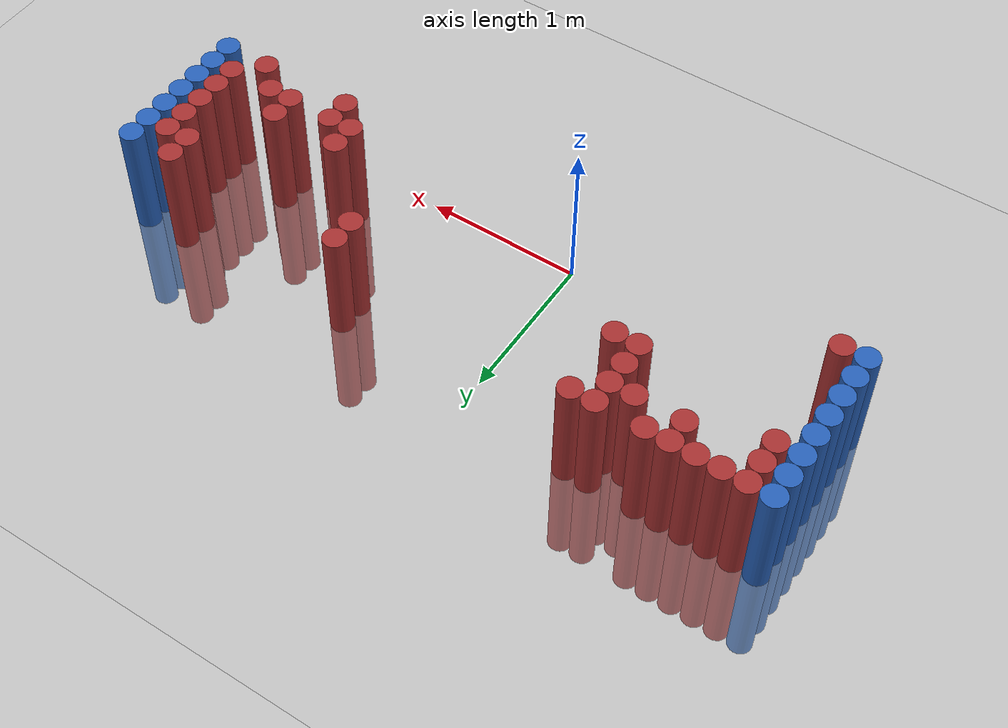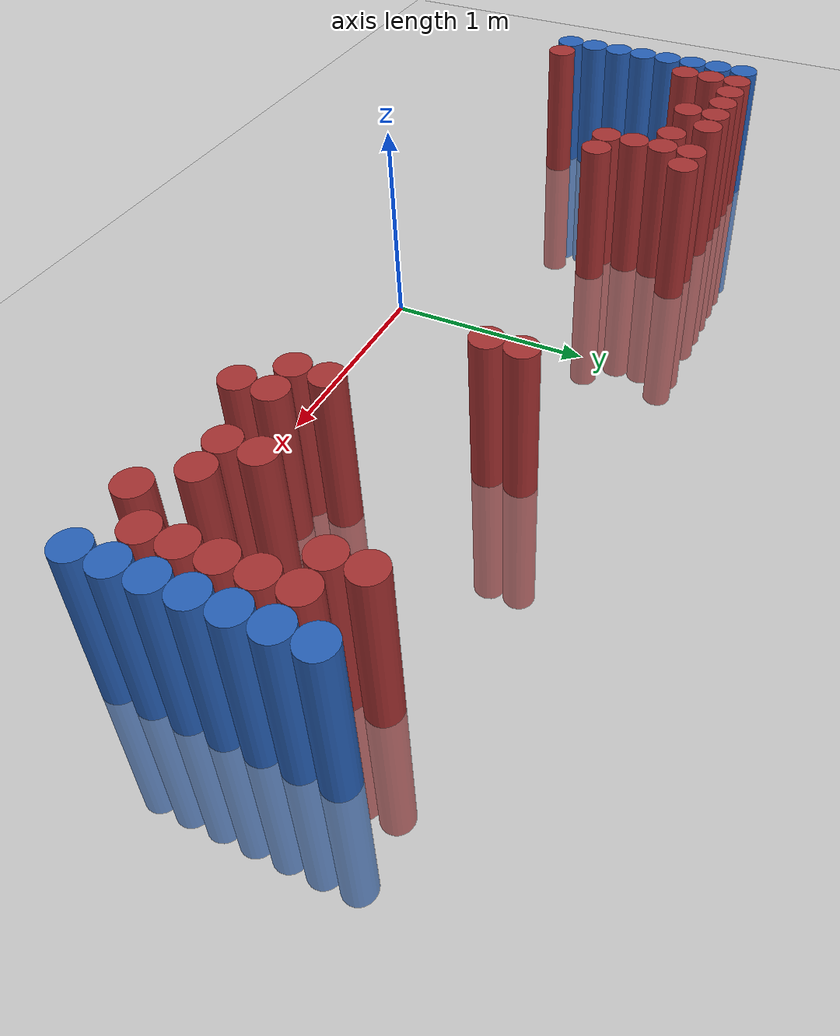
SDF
<sdf version="1.6">
 <world name="default">
  <model name="ground_plane">
   <static>1</static>
   <link name="link">
    <collision name="collision">
     <geometry><plane><normal>0 0 1</normal><size>100 100</size></plane></geometry>
     <surface><friction><ode><mu>100</mu><mu2>50</mu2></ode></friction></surface>
    </collision>
    <visual name="visual">
     <cast_shadows>0</cast_shadows>
     <geometry><plane><normal>0 0 1</normal><size>100 100</size></plane></geometry>
     <material>
      <script><uri>file://media/materials/scripts/gazebo.material</uri><name>Gazebo/Grey</name></script>
     </material>
    </visual>
   </link>
  </model>
  <model name="unit_cylinder_96">
   <static>1</static>
   <pose>-1.925000 0.175000 0.000000 0.000000 0.000000 0.000000</pose>
   <link name="link">
    <inertial>
     <mass>1</mass>
     <inertia><ixx>0.145833</ixx><ixy>0</ixy><ixz>0</ixz><iyy>0.145833</iyy><iyz>0</iyz><izz>0.125</izz></inertia>
    </inertial>
    <collision name="collision">
     <geometry><cylinder><radius>0.075000</radius><length>1.5</length></cylinder></geometry>
    </collision>
    <visual name="visual">
     <geometry><cylinder><radius>0.075000</radius><length>1.5</length></cylinder></geometry>
     <material>
      <ambient>0.152000 0.379000 0.720000 1</ambient>
      <diffuse>0.152000 0.379000 0.720000 1</diffuse>
     </material>
     <material>
      <script><name>Gazebo/Grey</name><uri>file://media/materials/scripts/gazebo.material</uri></script>
     </material>
    </visual>
   </link>
  </model>
  <model name="unit_cylinder_97">
   <static>1</static>
   <pose>-1.925000 0.325000 0.000000 0.000000 0.000000 0.000000</pose>
   <link name="link">
    <inertial>
     <mass>1</mass>
     <inertia><ixx>0.145833</ixx><ixy>0</ixy><ixz>0</ixz><iyy>0.145833</iyy><iyz>0</iyz><izz>0.125</izz></inertia>
    </inertial>
    <collision name="collision">
     <geometry><cylinder><radius>0.075000</radius><length>1.5</length></cylinder></geometry>
    </collision>
    <visual name="visual">
     <geometry><cylinder><radius>0.075000</radius><length>1.5</length></cylinder></geometry>
     <material>
      <ambient>0.152000 0.379000 0.720000 1</ambient>
      <diffuse>0.152000 0.379000 0.720000 1</diffuse>
     </material>
     <material>
      <script><name>Gazebo/Grey</name><uri>file://media/materials/scripts/gazebo.material</uri></script>
     </material>
    </visual>
   </link>
  </model>
  <model name="unit_cylinder_98">
   <static>1</static>
   <pose>-1.925000 0.475000 0.000000 0.000000 0.000000 0.000000</pose>
   <link name="link">
    <inertial>
     <mass>1</mass>
     <inertia><ixx>0.145833</ixx><ixy>0</ixy><ixz>0</ixz><iyy>0.145833</iyy><iyz>0</iyz><izz>0.125</izz></inertia>
    </inertial>
    <collision name="collision">
     <geometry><cylinder><radius>0.075000</radius><length>1.5</length></cylinder></geometry>
    </collision>
    <visual name="visual">
     <geometry><cylinder><radius>0.075000</radius><length>1.5</length></cylinder></geometry>
     <material>
      <ambient>0.152000 0.379000 0.720000 1</ambient>
      <diffuse>0.152000 0.379000 0.720000 1</diffuse>
     </material>
     <material>
      <script><name>Gazebo/Grey</name><uri>file://media/materials/scripts/gazebo.material</uri></script>
     </material>
    </visual>
   </link>
  </model>
  <model name="unit_cylinder_99">
   <static>1</static>
   <pose>-1.925000 0.625000 0.000000 0.000000 0.000000 0.000000</pose>
   <link name="link">
    <inertial>
     <mass>1</mass>
     <inertia><ixx>0.145833</ixx><ixy>0</ixy><ixz>0</ixz><iyy>0.145833</iyy><iyz>0</iyz><izz>0.125</izz></inertia>
    </inertial>
    <collision name="collision">
     <geometry><cylinder><radius>0.075000</radius><length>1.5</length></cylinder></geometry>
    </collision>
    <visual name="visual">
     <geometry><cylinder><radius>0.075000</radius><length>1.5</length></cylinder></geometry>
     <material>
      <ambient>0.152000 0.379000 0.720000 1</ambient>
      <diffuse>0.152000 0.379000 0.720000 1</diffuse>
     </material>
     <material>
      <script><name>Gazebo/Grey</name><uri>file://media/materials/scripts/gazebo.material</uri></script>
     </material>
    </visual>
   </link>
  </model>
  <model name="unit_cylinder_100">
   <static>1</static>
   <pose>-1.925000 0.775000 0.000000 0.000000 0.000000 0.000000</pose>
   <link name="link">
    <inertial>
     <mass>1</mass>
     <inertia><ixx>0.145833</ixx><ixy>0</ixy><ixz>0</ixz><iyy>0.145833</iyy><iyz>0</iyz><izz>0.125</izz></inertia>
    </inertial>
    <collision name="collision">
     <geometry><cylinder><radius>0.075000</radius><length>1.5</length></cylinder></geometry>
    </collision>
    <visual name="visual">
     <geometry><cylinder><radius>0.075000</radius><length>1.5</length></cylinder></geometry>
     <material>
      <ambient>0.152000 0.379000 0.720000 1</ambient>
      <diffuse>0.152000 0.379000 0.720000 1</diffuse>
     </material>
     <material>
      <script><name>Gazebo/Grey</name><uri>file://media/materials/scripts/gazebo.material</uri></script>
     </material>
    </visual>
   </link>
  </model>
  <model name="unit_cylinder_101">
   <static>1</static>
   <pose>-1.925000 0.925000 0.000000 0.000000 0.000000 0.000000</pose>
   <link name="link">
    <inertial>
     <mass>1</mass>
     <inertia><ixx>0.145833</ixx><ixy>0</ixy><ixz>0</ixz><iyy>0.145833</iyy><iyz>0</iyz><izz>0.125</izz></inertia>
    </inertial>
    <collision name="collision">
     <geometry><cylinder><radius>0.075000</radius><length>1.5</length></cylinder></geometry>
    </collision>
    <visual name="visual">
     <geometry><cylinder><radius>0.075000</radius><length>1.5</length></cylinder></geometry>
     <material>
      <ambient>0.152000 0.379000 0.720000 1</ambient>
      <diffuse>0.152000 0.379000 0.720000 1</diffuse>
     </material>
     <material>
      <script><name>Gazebo/Grey</name><uri>file://media/materials/scripts/gazebo.material</uri></script>
     </material>
    </visual>
   </link>
  </model>
  <model name="unit_cylinder_102">
   <static>1</static>
   <pose>-1.925000 1.075000 0.000000 0.000000 0.000000 0.000000</pose>
   <link name="link">
    <inertial>
     <mass>1</mass>
     <inertia><ixx>0.145833</ixx><ixy>0</ixy><ixz>0</ixz><iyy>0.145833</iyy><iyz>0</iyz><izz>0.125</izz></inertia>
    </inertial>
    <collision name="collision">
     <geometry><cylinder><radius>0.075000</radius><length>1.5</length></cylinder></geometry>
    </collision>
    <visual name="visual">
     <geometry><cylinder><radius>0.075000</radius><length>1.5</length></cylinder></geometry>
     <material>
      <ambient>0.152000 0.379000 0.720000 1</ambient>
      <diffuse>0.152000 0.379000 0.720000 1</diffuse>
     </material>
     <material>
      <script><name>Gazebo/Grey</name><uri>file://media/materials/scripts/gazebo.material</uri></script>
     </material>
    </visual>
   </link>
  </model>
  <model name="unit_cylinder_103">
   <static>1</static>
   <pose>-1.925000 1.225000 0.000000 0.000000 0.000000 0.000000</pose>
   <link name="link">
    <inertial>
     <mass>1</mass>
     <inertia><ixx>0.145833</ixx><ixy>0</ixy><ixz>0</ixz><iyy>0.145833</iyy><iyz>0</iyz><izz>0.125</izz></inertia>
    </inertial>
    <collision name="collision">
     <geometry><cylinder><radius>0.075000</radius><length>1.5</length></cylinder></geometry>
    </collision>
    <visual name="visual">
     <geometry><cylinder><radius>0.075000</radius><length>1.5</length></cylinder></geometry>
     <material>
      <ambient>0.152000 0.379000 0.720000 1</ambient>
      <diffuse>0.152000 0.379000 0.720000 1</diffuse>
     </material>
     <material>
      <script><name>Gazebo/Grey</name><uri>file://media/materials/scripts/gazebo.material</uri></script>
     </material>
    </visual>
   </link>
  </model>
  <model name="unit_cylinder_126">
   <static>1</static>
   <pose>-1.775000 0.175000 0.000000 0.000000 0.000000 0.000000</pose>
   <link name="link">
    <inertial>
     <mass>1</mass>
     <inertia><ixx>0.145833</ixx><ixy>0</ixy><ixz>0</ixz><iyy>0.145833</iyy><iyz>0</iyz><izz>0.125</izz></inertia>
    </inertial>
    <collision name="collision">
     <geometry><cylinder><radius>0.075000</radius><length>1.5</length></cylinder></geometry>
    </collision>
    <visual name="visual">
     <geometry><cylinder><radius>0.075000</radius><length>1.5</length></cylinder></geometry>
     <material>
      <ambient>0.648000 0.192000 0.192000 1</ambient>
      <diffuse>0.648000 0.192000 0.192000 1</diffuse>
     </material>
     <material>
      <script><name>Gazebo/Grey</name><uri>file://media/materials/scripts/gazebo.material</uri></script>
     </material>
    </visual>
   </link>
  </model>
  <model name="unit_cylinder_127">
   <static>1</static>
   <pose>-1.775000 0.925000 0.000000 0.000000 0.000000 0.000000</pose>
   <link name="link">
    <inertial>
     <mass>1</mass>
     <inertia><ixx>0.145833</ixx><ixy>0</ixy><ixz>0</ixz><iyy>0.145833</iyy><iyz>0</iyz><izz>0.125</izz></inertia>
    </inertial>
    <collision name="collision">
     <geometry><cylinder><radius>0.075000</radius><length>1.5</length></cylinder></geometry>
    </collision>
    <visual name="visual">
     <geometry><cylinder><radius>0.075000</radius><length>1.5</length></cylinder></geometry>
     <material>
      <ambient>0.648000 0.192000 0.192000 1</ambient>
      <diffuse>0.648000 0.192000 0.192000 1</diffuse>
     </material>
     <material>
      <script><name>Gazebo/Grey</name><uri>file://media/materials/scripts/gazebo.material</uri></script>
     </material>
    </visual>
   </link>
  </model>
  <model name="unit_cylinder_128">
   <static>1</static>
   <pose>-1.775000 1.075000 0.000000 0.000000 0.000000 0.000000</pose>
   <link name="link">
    <inertial>
     <mass>1</mass>
     <inertia><ixx>0.145833</ixx><ixy>0</ixy><ixz>0</ixz><iyy>0.145833</iyy><iyz>0</iyz><izz>0.125</izz></inertia>
    </inertial>
    <collision name="collision">
     <geometry><cylinder><radius>0.075000</radius><length>1.5</length></cylinder></geometry>
    </collision>
    <visual name="visual">
     <geometry><cylinder><radius>0.075000</radius><length>1.5</length></cylinder></geometry>
     <material>
      <ambient>0.648000 0.192000 0.192000 1</ambient>
      <diffuse>0.648000 0.192000 0.192000 1</diffuse>
     </material>
     <material>
      <script><name>Gazebo/Grey</name><uri>file://media/materials/scripts/gazebo.material</uri></script>
     </material>
    </visual>
   </link>
  </model>
  <model name="unit_cylinder_129">
   <static>1</static>
   <pose>-1.775000 1.225000 0.000000 0.000000 0.000000 0.000000</pose>
   <link name="link">
    <inertial>
     <mass>1</mass>
     <inertia><ixx>0.145833</ixx><ixy>0</ixy><ixz>0</ixz><iyy>0.145833</iyy><iyz>0</iyz><izz>0.125</izz></inertia>
    </inertial>
    <collision name="collision">
     <geometry><cylinder><radius>0.075000</radius><length>1.5</length></cylinder></geometry>
    </collision>
    <visual name="visual">
     <geometry><cylinder><radius>0.075000</radius><length>1.5</length></cylinder></geometry>
     <material>
      <ambient>0.648000 0.192000 0.192000 1</ambient>
      <diffuse>0.648000 0.192000 0.192000 1</diffuse>
     </material>
     <material>
      <script><name>Gazebo/Grey</name><uri>file://media/materials/scripts/gazebo.material</uri></script>
     </material>
    </visual>
   </link>
  </model>
  <model name="unit_cylinder_141">
   <static>1</static>
   <pose>-1.625000 1.225000 0.000000 0.000000 0.000000 0.000000</pose>
   <link name="link">
    <inertial>
     <mass>1</mass>
     <inertia><ixx>0.145833</ixx><ixy>0</ixy><ixz>0</ixz><iyy>0.145833</iyy><iyz>0</iyz><izz>0.125</izz></inertia>
    </inertial>
    <collision name="collision">
     <geometry><cylinder><radius>0.075000</radius><length>1.5</length></cylinder></geometry>
    </collision>
    <visual name="visual">
     <geometry><cylinder><radius>0.075000</radius><length>1.5</length></cylinder></geometry>
     <material>
      <ambient>0.648000 0.192000 0.192000 1</ambient>
      <diffuse>0.648000 0.192000 0.192000 1</diffuse>
     </material>
     <material>
      <script><name>Gazebo/Grey</name><uri>file://media/materials/scripts/gazebo.material</uri></script>
     </material>
    </visual>
   </link>
  </model>
  <model name="unit_cylinder_151">
   <static>1</static>
   <pose>-1.475000 1.225000 0.000000 0.000000 0.000000 0.000000</pose>
   <link name="link">
    <inertial>
     <mass>1</mass>
     <inertia><ixx>0.145833</ixx><ixy>0</ixy><ixz>0</ixz><iyy>0.145833</iyy><iyz>0</iyz><izz>0.125</izz></inertia>
    </inertial>
    <collision name="collision">
     <geometry><cylinder><radius>0.075000</radius><length>1.5</length></cylinder></geometry>
    </collision>
    <visual name="visual">
     <geometry><cylinder><radius>0.075000</radius><length>1.5</length></cylinder></geometry>
     <material>
      <ambient>0.648000 0.192000 0.192000 1</ambient>
      <diffuse>0.648000 0.192000 0.192000 1</diffuse>
     </material>
     <material>
      <script><name>Gazebo/Grey</name><uri>file://media/materials/scripts/gazebo.material</uri></script>
     </material>
    </visual>
   </link>
  </model>
  <model name="unit_cylinder_159">
   <static>1</static>
   <pose>-1.325000 1.075000 0.000000 0.000000 0.000000 0.000000</pose>
   <link name="link">
    <inertial>
     <mass>1</mass>
     <inertia><ixx>0.145833</ixx><ixy>0</ixy><ixz>0</ixz><iyy>0.145833</iyy><iyz>0</iyz><izz>0.125</izz></inertia>
    </inertial>
    <collision name="collision">
     <geometry><cylinder><radius>0.075000</radius><length>1.5</length></cylinder></geometry>
    </collision>
    <visual name="visual">
     <geometry><cylinder><radius>0.075000</radius><length>1.5</length></cylinder></geometry>
     <material>
      <ambient>0.648000 0.192000 0.192000 1</ambient>
      <diffuse>0.648000 0.192000 0.192000 1</diffuse>
     </material>
     <material>
      <script><name>Gazebo/Grey</name><uri>file://media/materials/scripts/gazebo.material</uri></script>
     </material>
    </visual>
   </link>
  </model>
  <model name="unit_cylinder_160">
   <static>1</static>
   <pose>-1.325000 1.225000 0.000000 0.000000 0.000000 0.000000</pose>
   <link name="link">
    <inertial>
     <mass>1</mass>
     <inertia><ixx>0.145833</ixx><ixy>0</ixy><ixz>0</ixz><iyy>0.145833</iyy><iyz>0</iyz><izz>0.125</izz></inertia>
    </inertial>
    <collision name="collision">
     <geometry><cylinder><radius>0.075000</radius><length>1.5</length></cylinder></geometry>
    </collision>
    <visual name="visual">
     <geometry><cylinder><radius>0.075000</radius><length>1.5</length></cylinder></geometry>
     <material>
      <ambient>0.648000 0.192000 0.192000 1</ambient>
      <diffuse>0.648000 0.192000 0.192000 1</diffuse>
     </material>
     <material>
      <script><name>Gazebo/Grey</name><uri>file://media/materials/scripts/gazebo.material</uri></script>
     </material>
    </visual>
   </link>
  </model>
  <model name="unit_cylinder_172">
   <static>1</static>
   <pose>-1.175000 1.225000 0.000000 0.000000 0.000000 0.000000</pose>
   <link name="link">
    <inertial>
     <mass>1</mass>
     <inertia><ixx>0.145833</ixx><ixy>0</ixy><ixz>0</ixz><iyy>0.145833</iyy><iyz>0</iyz><izz>0.125</izz></inertia>
    </inertial>
    <collision name="collision">
     <geometry><cylinder><radius>0.075000</radius><length>1.5</length></cylinder></geometry>
    </collision>
    <visual name="visual">
     <geometry><cylinder><radius>0.075000</radius><length>1.5</length></cylinder></geometry>
     <material>
      <ambient>0.648000 0.192000 0.192000 1</ambient>
      <diffuse>0.648000 0.192000 0.192000 1</diffuse>
     </material>
     <material>
      <script><name>Gazebo/Grey</name><uri>file://media/materials/scripts/gazebo.material</uri></script>
     </material>
    </visual>
   </link>
  </model>
  <model name="unit_cylinder_180">
   <static>1</static>
   <pose>-1.025000 1.075000 0.000000 0.000000 0.000000 0.000000</pose>
   <link name="link">
    <inertial>
     <mass>1</mass>
     <inertia><ixx>0.145833</ixx><ixy>0</ixy><ixz>0</ixz><iyy>0.145833</iyy><iyz>0</iyz><izz>0.125</izz></inertia>
    </inertial>
    <collision name="collision">
     <geometry><cylinder><radius>0.075000</radius><length>1.5</length></cylinder></geometry>
    </collision>
    <visual name="visual">
     <geometry><cylinder><radius>0.075000</radius><length>1.5</length></cylinder></geometry>
     <material>
      <ambient>0.648000 0.192000 0.192000 1</ambient>
      <diffuse>0.648000 0.192000 0.192000 1</diffuse>
     </material>
     <material>
      <script><name>Gazebo/Grey</name><uri>file://media/materials/scripts/gazebo.material</uri></script>
     </material>
    </visual>
   </link>
  </model>
  <model name="unit_cylinder_186">
   <static>1</static>
   <pose>-0.875000 0.775000 0.000000 0.000000 0.000000 0.000000</pose>
   <link name="link">
    <inertial>
     <mass>1</mass>
     <inertia><ixx>0.145833</ixx><ixy>0</ixy><ixz>0</ixz><iyy>0.145833</iyy><iyz>0</iyz><izz>0.125</izz></inertia>
    </inertial>
    <collision name="collision">
     <geometry><cylinder><radius>0.075000</radius><length>1.5</length></cylinder></geometry>
    </collision>
    <visual name="visual">
     <geometry><cylinder><radius>0.075000</radius><length>1.5</length></cylinder></geometry>
     <material>
      <ambient>0.648000 0.192000 0.192000 1</ambient>
      <diffuse>0.648000 0.192000 0.192000 1</diffuse>
     </material>
     <material>
      <script><name>Gazebo/Grey</name><uri>file://media/materials/scripts/gazebo.material</uri></script>
     </material>
    </visual>
   </link>
  </model>
  <model name="unit_cylinder_187">
   <static>1</static>
   <pose>-0.875000 0.925000 0.000000 0.000000 0.000000 0.000000</pose>
   <link name="link">
    <inertial>
     <mass>1</mass>
     <inertia><ixx>0.145833</ixx><ixy>0</ixy><ixz>0</ixz><iyy>0.145833</iyy><iyz>0</iyz><izz>0.125</izz></inertia>
    </inertial>
    <collision name="collision">
     <geometry><cylinder><radius>0.075000</radius><length>1.5</length></cylinder></geometry>
    </collision>
    <visual name="visual">
     <geometry><cylinder><radius>0.075000</radius><length>1.5</length></cylinder></geometry>
     <material>
      <ambient>0.648000 0.192000 0.192000 1</ambient>
      <diffuse>0.648000 0.192000 0.192000 1</diffuse>
     </material>
     <material>
      <script><name>Gazebo/Grey</name><uri>file://media/materials/scripts/gazebo.material</uri></script>
     </material>
    </visual>
   </link>
  </model>
  <model name="unit_cylinder_188">
   <static>1</static>
   <pose>-0.875000 1.075000 0.000000 0.000000 0.000000 0.000000</pose>
   <link name="link">
    <inertial>
     <mass>1</mass>
     <inertia><ixx>0.145833</ixx><ixy>0</ixy><ixz>0</ixz><iyy>0.145833</iyy><iyz>0</iyz><izz>0.125</izz></inertia>
    </inertial>
    <collision name="collision">
     <geometry><cylinder><radius>0.075000</radius><length>1.5</length></cylinder></geometry>
    </collision>
    <visual name="visual">
     <geometry><cylinder><radius>0.075000</radius><length>1.5</length></cylinder></geometry>
     <material>
      <ambient>0.648000 0.192000 0.192000 1</ambient>
      <diffuse>0.648000 0.192000 0.192000 1</diffuse>
     </material>
     <material>
      <script><name>Gazebo/Grey</name><uri>file://media/materials/scripts/gazebo.material</uri></script>
     </material>
    </visual>
   </link>
  </model>
  <model name="unit_cylinder_189">
   <static>1</static>
   <pose>-0.875000 1.225000 0.000000 0.000000 0.000000 0.000000</pose>
   <link name="link">
    <inertial>
     <mass>1</mass>
     <inertia><ixx>0.145833</ixx><ixy>0</ixy><ixz>0</ixz><iyy>0.145833</iyy><iyz>0</iyz><izz>0.125</izz></inertia>
    </inertial>
    <collision name="collision">
     <geometry><cylinder><radius>0.075000</radius><length>1.5</length></cylinder></geometry>
    </collision>
    <visual name="visual">
     <geometry><cylinder><radius>0.075000</radius><length>1.5</length></cylinder></geometry>
     <material>
      <ambient>0.648000 0.192000 0.192000 1</ambient>
      <diffuse>0.648000 0.192000 0.192000 1</diffuse>
     </material>
     <material>
      <script><name>Gazebo/Grey</name><uri>file://media/materials/scripts/gazebo.material</uri></script>
     </material>
    </visual>
   </link>
  </model>
  <model name="unit_cylinder_193">
   <static>1</static>
   <pose>-0.725000 0.775000 0.000000 0.000000 0.000000 0.000000</pose>
   <link name="link">
    <inertial>
     <mass>1</mass>
     <inertia><ixx>0.145833</ixx><ixy>0</ixy><ixz>0</ixz><iyy>0.145833</iyy><iyz>0</iyz><izz>0.125</izz></inertia>
    </inertial>
    <collision name="collision">
     <geometry><cylinder><radius>0.075000</radius><length>1.5</length></cylinder></geometry>
    </collision>
    <visual name="visual">
     <geometry><cylinder><radius>0.075000</radius><length>1.5</length></cylinder></geometry>
     <material>
      <ambient>0.648000 0.192000 0.192000 1</ambient>
      <diffuse>0.648000 0.192000 0.192000 1</diffuse>
     </material>
     <material>
      <script><name>Gazebo/Grey</name><uri>file://media/materials/scripts/gazebo.material</uri></script>
     </material>
    </visual>
   </link>
  </model>
  <model name="unit_cylinder_194">
   <static>1</static>
   <pose>-0.725000 1.225000 0.000000 0.000000 0.000000 0.000000</pose>
   <link name="link">
    <inertial>
     <mass>1</mass>
     <inertia><ixx>0.145833</ixx><ixy>0</ixy><ixz>0</ixz><iyy>0.145833</iyy><iyz>0</iyz><izz>0.125</izz></inertia>
    </inertial>
    <collision name="collision">
     <geometry><cylinder><radius>0.075000</radius><length>1.5</length></cylinder></geometry>
    </collision>
    <visual name="visual">
     <geometry><cylinder><radius>0.075000</radius><length>1.5</length></cylinder></geometry>
     <material>
      <ambient>0.648000 0.192000 0.192000 1</ambient>
      <diffuse>0.648000 0.192000 0.192000 1</diffuse>
     </material>
     <material>
      <script><name>Gazebo/Grey</name><uri>file://media/materials/scripts/gazebo.material</uri></script>
     </material>
    </visual>
   </link>
  </model>
  <model name="unit_cylinder_215">
   <static>1</static>
   <pose>0.925000 0.925000 0.000000 0.000000 0.000000 0.000000</pose>
   <link name="link">
    <inertial>
     <mass>1</mass>
     <inertia><ixx>0.145833</ixx><ixy>0</ixy><ixz>0</ixz><iyy>0.145833</iyy><iyz>0</iyz><izz>0.125</izz></inertia>
    </inertial>
    <collision name="collision">
     <geometry><cylinder><radius>0.075000</radius><length>1.5</length></cylinder></geometry>
    </collision>
    <visual name="visual">
     <geometry><cylinder><radius>0.075000</radius><length>1.5</length></cylinder></geometry>
     <material>
      <ambient>0.648000 0.192000 0.192000 1</ambient>
      <diffuse>0.648000 0.192000 0.192000 1</diffuse>
     </material>
     <material>
      <script><name>Gazebo/Grey</name><uri>file://media/materials/scripts/gazebo.material</uri></script>
     </material>
    </visual>
   </link>
  </model>
  <model name="unit_cylinder_216">
   <static>1</static>
   <pose>0.925000 1.075000 0.000000 0.000000 0.000000 0.000000</pose>
   <link name="link">
    <inertial>
     <mass>1</mass>
     <inertia><ixx>0.145833</ixx><ixy>0</ixy><ixz>0</ixz><iyy>0.145833</iyy><iyz>0</iyz><izz>0.125</izz></inertia>
    </inertial>
    <collision name="collision">
     <geometry><cylinder><radius>0.075000</radius><length>1.5</length></cylinder></geometry>
    </collision>
    <visual name="visual">
     <geometry><cylinder><radius>0.075000</radius><length>1.5</length></cylinder></geometry>
     <material>
      <ambient>0.648000 0.192000 0.192000 1</ambient>
      <diffuse>0.648000 0.192000 0.192000 1</diffuse>
     </material>
     <material>
      <script><name>Gazebo/Grey</name><uri>file://media/materials/scripts/gazebo.material</uri></script>
     </material>
    </visual>
   </link>
  </model>
  <model name="unit_cylinder_220">
   <static>1</static>
   <pose>1.375000 0.325000 0.000000 0.000000 0.000000 0.000000</pose>
   <link name="link">
    <inertial>
     <mass>1</mass>
     <inertia><ixx>0.145833</ixx><ixy>0</ixy><ixz>0</ixz><iyy>0.145833</iyy><iyz>0</iyz><izz>0.125</izz></inertia>
    </inertial>
    <collision name="collision">
     <geometry><cylinder><radius>0.075000</radius><length>1.5</length></cylinder></geometry>
    </collision>
    <visual name="visual">
     <geometry><cylinder><radius>0.075000</radius><length>1.5</length></cylinder></geometry>
     <material>
      <ambient>0.648000 0.192000 0.192000 1</ambient>
      <diffuse>0.648000 0.192000 0.192000 1</diffuse>
     </material>
     <material>
      <script><name>Gazebo/Grey</name><uri>file://media/materials/scripts/gazebo.material</uri></script>
     </material>
    </visual>
   </link>
  </model>
  <model name="unit_cylinder_221">
   <static>1</static>
   <pose>1.375000 0.475000 0.000000 0.000000 0.000000 0.000000</pose>
   <link name="link">
    <inertial>
     <mass>1</mass>
     <inertia><ixx>0.145833</ixx><ixy>0</ixy><ixz>0</ixz><iyy>0.145833</iyy><iyz>0</iyz><izz>0.125</izz></inertia>
    </inertial>
    <collision name="collision">
     <geometry><cylinder><radius>0.075000</radius><length>1.5</length></cylinder></geometry>
    </collision>
    <visual name="visual">
     <geometry><cylinder><radius>0.075000</radius><length>1.5</length></cylinder></geometry>
     <material>
      <ambient>0.648000 0.192000 0.192000 1</ambient>
      <diffuse>0.648000 0.192000 0.192000 1</diffuse>
     </material>
     <material>
      <script><name>Gazebo/Grey</name><uri>file://media/materials/scripts/gazebo.material</uri></script>
     </material>
    </visual>
   </link>
  </model>
  <model name="unit_cylinder_224">
   <static>1</static>
   <pose>1.525000 0.175000 0.000000 0.000000 0.000000 0.000000</pose>
   <link name="link">
    <inertial>
     <mass>1</mass>
     <inertia><ixx>0.145833</ixx><ixy>0</ixy><ixz>0</ixz><iyy>0.145833</iyy><iyz>0</iyz><izz>0.125</izz></inertia>
    </inertial>
    <collision name="collision">
     <geometry><cylinder><radius>0.075000</radius><length>1.5</length></cylinder></geometry>
    </collision>
    <visual name="visual">
     <geometry><cylinder><radius>0.075000</radius><length>1.5</length></cylinder></geometry>
     <material>
      <ambient>0.648000 0.192000 0.192000 1</ambient>
      <diffuse>0.648000 0.192000 0.192000 1</diffuse>
     </material>
     <material>
      <script><name>Gazebo/Grey</name><uri>file://media/materials/scripts/gazebo.material</uri></script>
     </material>
    </visual>
   </link>
  </model>
  <model name="unit_cylinder_225">
   <static>1</static>
   <pose>1.525000 0.325000 0.000000 0.000000 0.000000 0.000000</pose>
   <link name="link">
    <inertial>
     <mass>1</mass>
     <inertia><ixx>0.145833</ixx><ixy>0</ixy><ixz>0</ixz><iyy>0.145833</iyy><iyz>0</iyz><izz>0.125</izz></inertia>
    </inertial>
    <collision name="collision">
     <geometry><cylinder><radius>0.075000</radius><length>1.5</length></cylinder></geometry>
    </collision>
    <visual name="visual">
     <geometry><cylinder><radius>0.075000</radius><length>1.5</length></cylinder></geometry>
     <material>
      <ambient>0.648000 0.192000 0.192000 1</ambient>
      <diffuse>0.648000 0.192000 0.192000 1</diffuse>
     </material>
     <material>
      <script><name>Gazebo/Grey</name><uri>file://media/materials/scripts/gazebo.material</uri></script>
     </material>
    </visual>
   </link>
  </model>
  <model name="unit_cylinder_227">
   <static>1</static>
   <pose>1.825000 0.325000 0.000000 0.000000 0.000000 0.000000</pose>
   <link name="link">
    <inertial>
     <mass>1</mass>
     <inertia><ixx>0.145833</ixx><ixy>0</ixy><ixz>0</ixz><iyy>0.145833</iyy><iyz>0</iyz><izz>0.125</izz></inertia>
    </inertial>
    <collision name="collision">
     <geometry><cylinder><radius>0.075000</radius><length>1.5</length></cylinder></geometry>
    </collision>
    <visual name="visual">
     <geometry><cylinder><radius>0.075000</radius><length>1.5</length></cylinder></geometry>
     <material>
      <ambient>0.648000 0.192000 0.192000 1</ambient>
      <diffuse>0.648000 0.192000 0.192000 1</diffuse>
     </material>
     <material>
      <script><name>Gazebo/Grey</name><uri>file://media/materials/scripts/gazebo.material</uri></script>
     </material>
    </visual>
   </link>
  </model>
  <model name="unit_cylinder_228">
   <static>1</static>
   <pose>1.825000 0.475000 0.000000 0.000000 0.000000 0.000000</pose>
   <link name="link">
    <inertial>
     <mass>1</mass>
     <inertia><ixx>0.145833</ixx><ixy>0</ixy><ixz>0</ixz><iyy>0.145833</iyy><iyz>0</iyz><izz>0.125</izz></inertia>
    </inertial>
    <collision name="collision">
     <geometry><cylinder><radius>0.075000</radius><length>1.5</length></cylinder></geometry>
    </collision>
    <visual name="visual">
     <geometry><cylinder><radius>0.075000</radius><length>1.5</length></cylinder></geometry>
     <material>
      <ambient>0.648000 0.192000 0.192000 1</ambient>
      <diffuse>0.648000 0.192000 0.192000 1</diffuse>
     </material>
     <material>
      <script><name>Gazebo/Grey</name><uri>file://media/materials/scripts/gazebo.material</uri></script>
     </material>
    </visual>
   </link>
  </model>
  <model name="unit_cylinder_231">
   <static>1</static>
   <pose>1.975000 0.325000 0.000000 0.000000 0.000000 0.000000</pose>
   <link name="link">
    <inertial>
     <mass>1</mass>
     <inertia><ixx>0.145833</ixx><ixy>0</ixy><ixz>0</ixz><iyy>0.145833</iyy><iyz>0</iyz><izz>0.125</izz></inertia>
    </inertial>
    <collision name="collision">
     <geometry><cylinder><radius>0.075000</radius><length>1.5</length></cylinder></geometry>
    </collision>
    <visual name="visual">
     <geometry><cylinder><radius>0.075000</radius><length>1.5</length></cylinder></geometry>
     <material>
      <ambient>0.648000 0.192000 0.192000 1</ambient>
      <diffuse>0.648000 0.192000 0.192000 1</diffuse>
     </material>
     <material>
      <script><name>Gazebo/Grey</name><uri>file://media/materials/scripts/gazebo.material</uri></script>
     </material>
    </visual>
   </link>
  </model>
  <model name="unit_cylinder_234">
   <static>1</static>
   <pose>2.125000 0.175000 0.000000 0.000000 0.000000 0.000000</pose>
   <link name="link">
    <inertial>
     <mass>1</mass>
     <inertia><ixx>0.145833</ixx><ixy>0</ixy><ixz>0</ixz><iyy>0.145833</iyy><iyz>0</iyz><izz>0.125</izz></inertia>
    </inertial>
    <collision name="collision">
     <geometry><cylinder><radius>0.075000</radius><length>1.5</length></cylinder></geometry>
    </collision>
    <visual name="visual">
     <geometry><cylinder><radius>0.075000</radius><length>1.5</length></cylinder></geometry>
     <material>
      <ambient>0.648000 0.192000 0.192000 1</ambient>
      <diffuse>0.648000 0.192000 0.192000 1</diffuse>
     </material>
     <material>
      <script><name>Gazebo/Grey</name><uri>file://media/materials/scripts/gazebo.material</uri></script>
     </material>
    </visual>
   </link>
  </model>
  <model name="unit_cylinder_235">
   <static>1</static>
   <pose>2.125000 0.925000 0.000000 0.000000 0.000000 0.000000</pose>
   <link name="link">
    <inertial>
     <mass>1</mass>
     <inertia><ixx>0.145833</ixx><ixy>0</ixy><ixz>0</ixz><iyy>0.145833</iyy><iyz>0</iyz><izz>0.125</izz></inertia>
    </inertial>
    <collision name="collision">
     <geometry><cylinder><radius>0.075000</radius><length>1.5</length></cylinder></geometry>
    </collision>
    <visual name="visual">
     <geometry><cylinder><radius>0.075000</radius><length>1.5</length></cylinder></geometry>
     <material>
      <ambient>0.648000 0.192000 0.192000 1</ambient>
      <diffuse>0.648000 0.192000 0.192000 1</diffuse>
     </material>
     <material>
      <script><name>Gazebo/Grey</name><uri>file://media/materials/scripts/gazebo.material</uri></script>
     </material>
    </visual>
   </link>
  </model>
  <model name="unit_cylinder_236">
   <static>1</static>
   <pose>2.125000 1.075000 0.000000 0.000000 0.000000 0.000000</pose>
   <link name="link">
    <inertial>
     <mass>1</mass>
     <inertia><ixx>0.145833</ixx><ixy>0</ixy><ixz>0</ixz><iyy>0.145833</iyy><iyz>0</iyz><izz>0.125</izz></inertia>
    </inertial>
    <collision name="collision">
     <geometry><cylinder><radius>0.075000</radius><length>1.5</length></cylinder></geometry>
    </collision>
    <visual name="visual">
     <geometry><cylinder><radius>0.075000</radius><length>1.5</length></cylinder></geometry>
     <material>
      <ambient>0.648000 0.192000 0.192000 1</ambient>
      <diffuse>0.648000 0.192000 0.192000 1</diffuse>
     </material>
     <material>
      <script><name>Gazebo/Grey</name><uri>file://media/materials/scripts/gazebo.material</uri></script>
     </material>
    </visual>
   </link>
  </model>
  <model name="unit_cylinder_242">
   <static>1</static>
   <pose>2.275000 0.325000 0.000000 0.000000 0.000000 0.000000</pose>
   <link name="link">
    <inertial>
     <mass>1</mass>
     <inertia><ixx>0.145833</ixx><ixy>0</ixy><ixz>0</ixz><iyy>0.145833</iyy><iyz>0</iyz><izz>0.125</izz></inertia>
    </inertial>
    <collision name="collision">
     <geometry><cylinder><radius>0.075000</radius><length>1.5</length></cylinder></geometry>
    </collision>
    <visual name="visual">
     <geometry><cylinder><radius>0.075000</radius><length>1.5</length></cylinder></geometry>
     <material>
      <ambient>0.648000 0.192000 0.192000 1</ambient>
      <diffuse>0.648000 0.192000 0.192000 1</diffuse>
     </material>
     <material>
      <script><name>Gazebo/Grey</name><uri>file://media/materials/scripts/gazebo.material</uri></script>
     </material>
    </visual>
   </link>
  </model>
  <model name="unit_cylinder_243">
   <static>1</static>
   <pose>2.275000 0.475000 0.000000 0.000000 0.000000 0.000000</pose>
   <link name="link">
    <inertial>
     <mass>1</mass>
     <inertia><ixx>0.145833</ixx><ixy>0</ixy><ixz>0</ixz><iyy>0.145833</iyy><iyz>0</iyz><izz>0.125</izz></inertia>
    </inertial>
    <collision name="collision">
     <geometry><cylinder><radius>0.075000</radius><length>1.5</length></cylinder></geometry>
    </collision>
    <visual name="visual">
     <geometry><cylinder><radius>0.075000</radius><length>1.5</length></cylinder></geometry>
     <material>
      <ambient>0.648000 0.192000 0.192000 1</ambient>
      <diffuse>0.648000 0.192000 0.192000 1</diffuse>
     </material>
     <material>
      <script><name>Gazebo/Grey</name><uri>file://media/materials/scripts/gazebo.material</uri></script>
     </material>
    </visual>
   </link>
  </model>
  <model name="unit_cylinder_244">
   <static>1</static>
   <pose>2.275000 0.625000 0.000000 0.000000 0.000000 0.000000</pose>
   <link name="link">
    <inertial>
     <mass>1</mass>
     <inertia><ixx>0.145833</ixx><ixy>0</ixy><ixz>0</ixz><iyy>0.145833</iyy><iyz>0</iyz><izz>0.125</izz></inertia>
    </inertial>
    <collision name="collision">
     <geometry><cylinder><radius>0.075000</radius><length>1.5</length></cylinder></geometry>
    </collision>
    <visual name="visual">
     <geometry><cylinder><radius>0.075000</radius><length>1.5</length></cylinder></geometry>
     <material>
      <ambient>0.648000 0.192000 0.192000 1</ambient>
      <diffuse>0.648000 0.192000 0.192000 1</diffuse>
     </material>
     <material>
      <script><name>Gazebo/Grey</name><uri>file://media/materials/scripts/gazebo.material</uri></script>
     </material>
    </visual>
   </link>
  </model>
  <model name="unit_cylinder_245">
   <static>1</static>
   <pose>2.275000 0.775000 0.000000 0.000000 0.000000 0.000000</pose>
   <link name="link">
    <inertial>
     <mass>1</mass>
     <inertia><ixx>0.145833</ixx><ixy>0</ixy><ixz>0</ixz><iyy>0.145833</iyy><iyz>0</iyz><izz>0.125</izz></inertia>
    </inertial>
    <collision name="collision">
     <geometry><cylinder><radius>0.075000</radius><length>1.5</length></cylinder></geometry>
    </collision>
    <visual name="visual">
     <geometry><cylinder><radius>0.075000</radius><length>1.5</length></cylinder></geometry>
     <material>
      <ambient>0.648000 0.192000 0.192000 1</ambient>
      <diffuse>0.648000 0.192000 0.192000 1</diffuse>
     </material>
     <material>
      <script><name>Gazebo/Grey</name><uri>file://media/materials/scripts/gazebo.material</uri></script>
     </material>
    </visual>
   </link>
  </model>
  <model name="unit_cylinder_246">
   <static>1</static>
   <pose>2.275000 0.925000 0.000000 0.000000 0.000000 0.000000</pose>
   <link name="link">
    <inertial>
     <mass>1</mass>
     <inertia><ixx>0.145833</ixx><ixy>0</ixy><ixz>0</ixz><iyy>0.145833</iyy><iyz>0</iyz><izz>0.125</izz></inertia>
    </inertial>
    <collision name="collision">
     <geometry><cylinder><radius>0.075000</radius><length>1.5</length></cylinder></geometry>
    </collision>
    <visual name="visual">
     <geometry><cylinder><radius>0.075000</radius><length>1.5</length></cylinder></geometry>
     <material>
      <ambient>0.648000 0.192000 0.192000 1</ambient>
      <diffuse>0.648000 0.192000 0.192000 1</diffuse>
     </material>
     <material>
      <script><name>Gazebo/Grey</name><uri>file://media/materials/scripts/gazebo.material</uri></script>
     </material>
    </visual>
   </link>
  </model>
  <model name="unit_cylinder_257">
   <static>1</static>
   <pose>2.425000 0.175000 0.000000 0.000000 0.000000 0.000000</pose>
   <link name="link">
    <inertial>
     <mass>1</mass>
     <inertia><ixx>0.145833</ixx><ixy>0</ixy><ixz>0</ixz><iyy>0.145833</iyy><iyz>0</iyz><izz>0.125</izz></inertia>
    </inertial>
    <collision name="collision">
     <geometry><cylinder><radius>0.075000</radius><length>1.5</length></cylinder></geometry>
    </collision>
    <visual name="visual">
     <geometry><cylinder><radius>0.075000</radius><length>1.5</length></cylinder></geometry>
     <material>
      <ambient>0.152000 0.379000 0.720000 1</ambient>
      <diffuse>0.152000 0.379000 0.720000 1</diffuse>
     </material>
     <material>
      <script><name>Gazebo/Grey</name><uri>file://media/materials/scripts/gazebo.material</uri></script>
     </material>
    </visual>
   </link>
  </model>
  <model name="unit_cylinder_258">
   <static>1</static>
   <pose>2.425000 0.325000 0.000000 0.000000 0.000000 0.000000</pose>
   <link name="link">
    <inertial>
     <mass>1</mass>
     <inertia><ixx>0.145833</ixx><ixy>0</ixy><ixz>0</ixz><iyy>0.145833</iyy><iyz>0</iyz><izz>0.125</izz></inertia>
    </inertial>
    <collision name="collision">
     <geometry><cylinder><radius>0.075000</radius><length>1.5</length></cylinder></geometry>
    </collision>
    <visual name="visual">
     <geometry><cylinder><radius>0.075000</radius><length>1.5</length></cylinder></geometry>
     <material>
      <ambient>0.152000 0.379000 0.720000 1</ambient>
      <diffuse>0.152000 0.379000 0.720000 1</diffuse>
     </material>
     <material>
      <script><name>Gazebo/Grey</name><uri>file://media/materials/scripts/gazebo.material</uri></script>
     </material>
    </visual>
   </link>
  </model>
  <model name="unit_cylinder_259">
   <static>1</static>
   <pose>2.425000 0.475000 0.000000 0.000000 0.000000 0.000000</pose>
   <link name="link">
    <inertial>
     <mass>1</mass>
     <inertia><ixx>0.145833</ixx><ixy>0</ixy><ixz>0</ixz><iyy>0.145833</iyy><iyz>0</iyz><izz>0.125</izz></inertia>
    </inertial>
    <collision name="collision">
     <geometry><cylinder><radius>0.075000</radius><length>1.5</length></cylinder></geometry>
    </collision>
    <visual name="visual">
     <geometry><cylinder><radius>0.075000</radius><length>1.5</length></cylinder></geometry>
     <material>
      <ambient>0.152000 0.379000 0.720000 1</ambient>
      <diffuse>0.152000 0.379000 0.720000 1</diffuse>
     </material>
     <material>
      <script><name>Gazebo/Grey</name><uri>file://media/materials/scripts/gazebo.material</uri></script>
     </material>
    </visual>
   </link>
  </model>
  <model name="unit_cylinder_260">
   <static>1</static>
   <pose>2.425000 0.625000 0.000000 0.000000 0.000000 0.000000</pose>
   <link name="link">
    <inertial>
     <mass>1</mass>
     <inertia><ixx>0.145833</ixx><ixy>0</ixy><ixz>0</ixz><iyy>0.145833</iyy><iyz>0</iyz><izz>0.125</izz></inertia>
    </inertial>
    <collision name="collision">
     <geometry><cylinder><radius>0.075000</radius><length>1.5</length></cylinder></geometry>
    </collision>
    <visual name="visual">
     <geometry><cylinder><radius>0.075000</radius><length>1.5</length></cylinder></geometry>
     <material>
      <ambient>0.152000 0.379000 0.720000 1</ambient>
      <diffuse>0.152000 0.379000 0.720000 1</diffuse>
     </material>
     <material>
      <script><name>Gazebo/Grey</name><uri>file://media/materials/scripts/gazebo.material</uri></script>
     </material>
    </visual>
   </link>
  </model>
  <model name="unit_cylinder_261">
   <static>1</static>
   <pose>2.425000 0.775000 0.000000 0.000000 0.000000 0.000000</pose>
   <link name="link">
    <inertial>
     <mass>1</mass>
     <inertia><ixx>0.145833</ixx><ixy>0</ixy><ixz>0</ixz><iyy>0.145833</iyy><iyz>0</iyz><izz>0.125</izz></inertia>
    </inertial>
    <collision name="collision">
     <geometry><cylinder><radius>0.075000</radius><length>1.5</length></cylinder></geometry>
    </collision>
    <visual name="visual">
     <geometry><cylinder><radius>0.075000</radius><length>1.5</length></cylinder></geometry>
     <material>
      <ambient>0.152000 0.379000 0.720000 1</ambient>
      <diffuse>0.152000 0.379000 0.720000 1</diffuse>
     </material>
     <material>
      <script><name>Gazebo/Grey</name><uri>file://media/materials/scripts/gazebo.material</uri></script>
     </material>
    </visual>
   </link>
  </model>
  <model name="unit_cylinder_262">
   <static>1</static>
   <pose>2.425000 0.925000 0.000000 0.000000 0.000000 0.000000</pose>
   <link name="link">
    <inertial>
     <mass>1</mass>
     <inertia><ixx>0.145833</ixx><ixy>0</ixy><ixz>0</ixz><iyy>0.145833</iyy><iyz>0</iyz><izz>0.125</izz></inertia>
    </inertial>
    <collision name="collision">
     <geometry><cylinder><radius>0.075000</radius><length>1.5</length></cylinder></geometry>
    </collision>
    <visual name="visual">
     <geometry><cylinder><radius>0.075000</radius><length>1.5</length></cylinder></geometry>
     <material>
      <ambient>0.152000 0.379000 0.720000 1</ambient>
      <diffuse>0.152000 0.379000 0.720000 1</diffuse>
     </material>
     <material>
      <script><name>Gazebo/Grey</name><uri>file://media/materials/scripts/gazebo.material</uri></script>
     </material>
    </visual>
   </link>
  </model>
  <model name="unit_cylinder_263">
   <static>1</static>
   <pose>2.425000 1.075000 0.000000 0.000000 0.000000 0.000000</pose>
   <link name="link">
    <inertial>
     <mass>1</mass>
     <inertia><ixx>0.145833</ixx><ixy>0</ixy><ixz>0</ixz><iyy>0.145833</iyy><iyz>0</iyz><izz>0.125</izz></inertia>
    </inertial>
    <collision name="collision">
     <geometry><cylinder><radius>0.075000</radius><length>1.5</length></cylinder></geometry>
    </collision>
    <visual name="visual">
     <geometry><cylinder><radius>0.075000</radius><length>1.5</length></cylinder></geometry>
     <material>
      <ambient>0.152000 0.379000 0.720000 1</ambient>
      <diffuse>0.152000 0.379000 0.720000 1</diffuse>
     </material>
     <material>
      <script><name>Gazebo/Grey</name><uri>file://media/materials/scripts/gazebo.material</uri></script>
     </material>
    </visual>
   </link>
  </model>
 </world>
</sdf>
